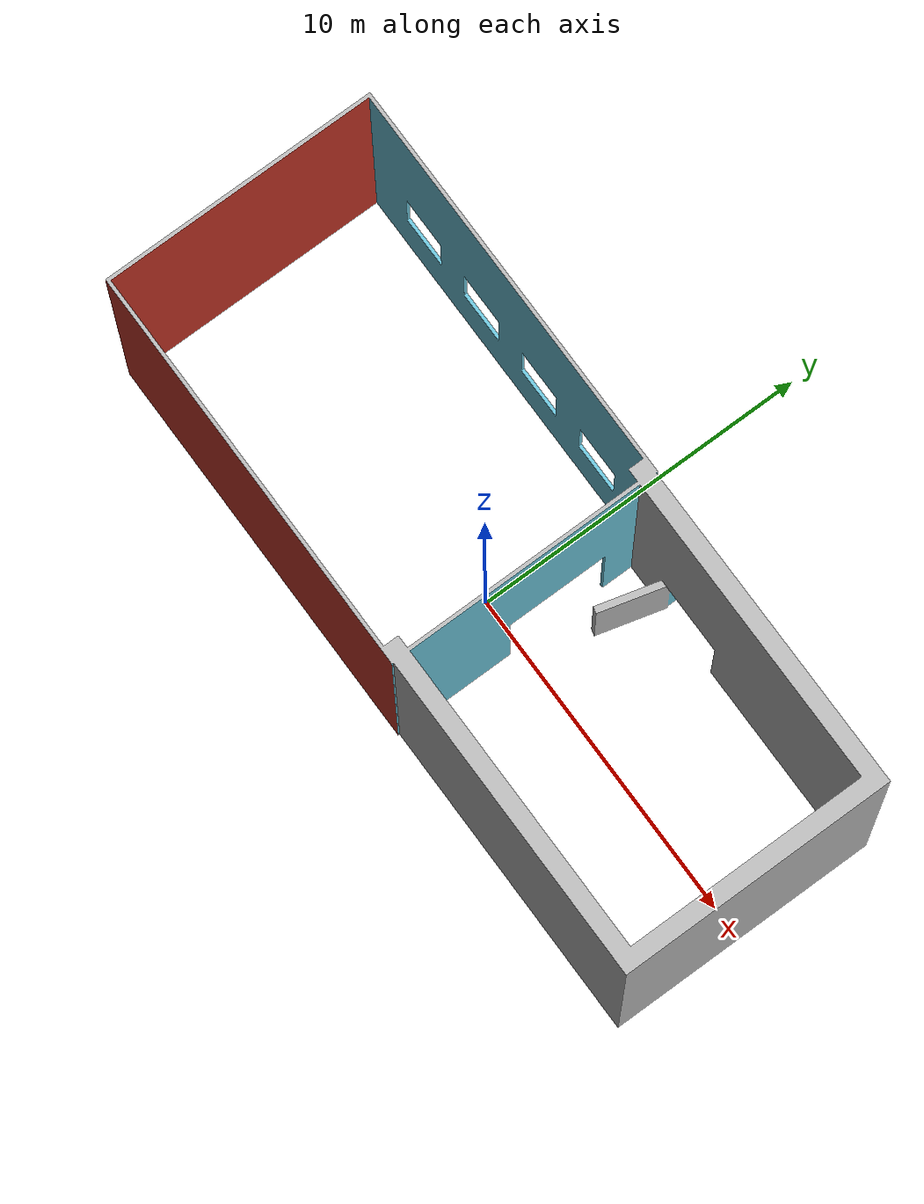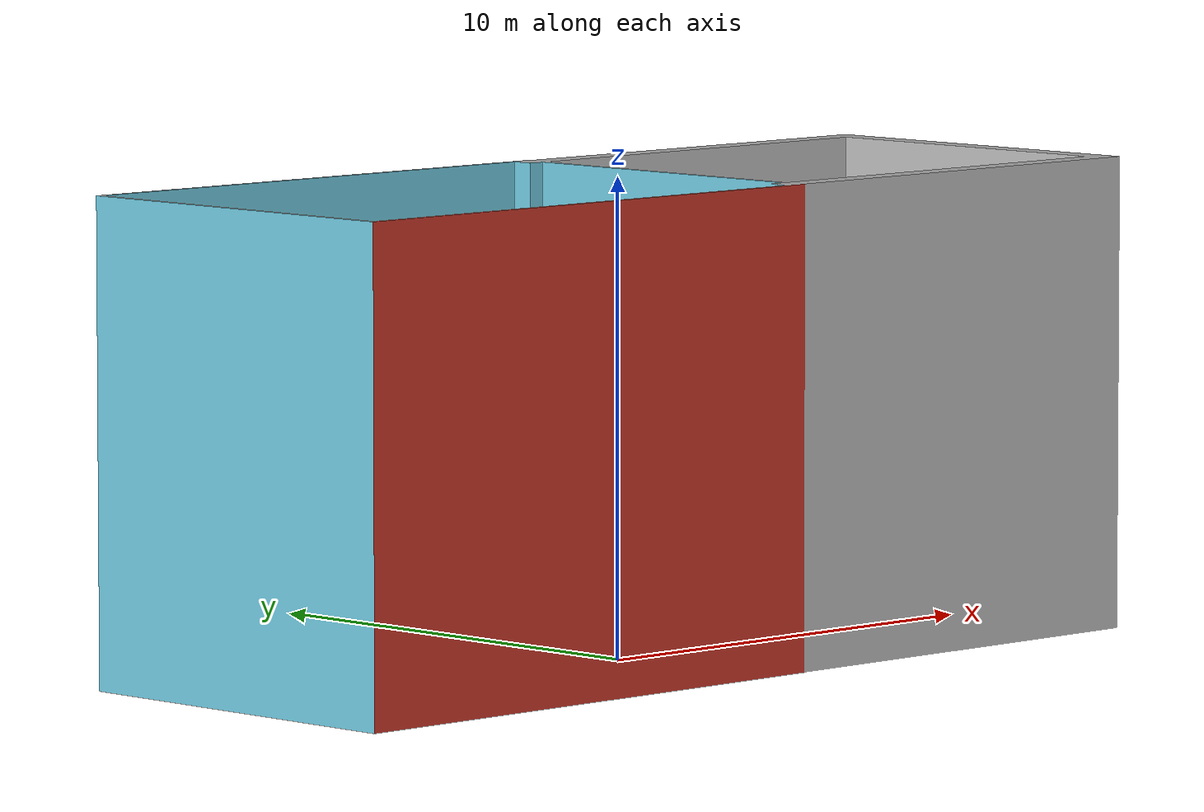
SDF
<?xml version="1.0" ?>
<sdf version="1.5">
  <model name="acit lab">
    <pose>-10.5 -3.8 0  0 0 0</pose>
    <static>true</static>
    <link name="body">
      <inertial>
        <mass>1000.0</mass>
        <inertia>
          <ixx>1</ixx>
          <ixy>0</ixy>
          <ixz>0</ixz>
          <iyy>1</iyy>
          <iyz>0</iyz>
          <izz>1</izz>
        </inertia>
      </inertial>

      <collision name="collision">
        <geometry>
          <mesh>
            <uri>model://acit_lab/lab_v2.dae</uri>
          </mesh>
        </geometry>
	<surface>
          <contact>
            <ode>
              <max_vel>0.1</max_vel>
              <min_depth>0.001</min_depth>
            </ode>
          </contact>
        </surface>
      </collision>
      <visual name="visual">
        <geometry>
          <mesh>
            <uri>model://acit_lab/lab_v2.dae</uri>
          </mesh>
	</geometry>
      </visual>
    </link>
  </model>
</sdf>
